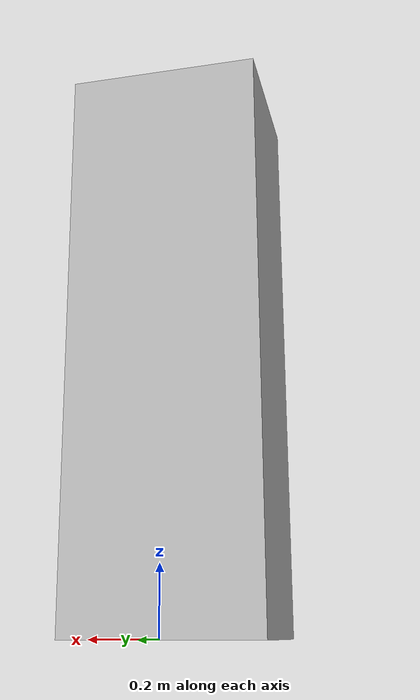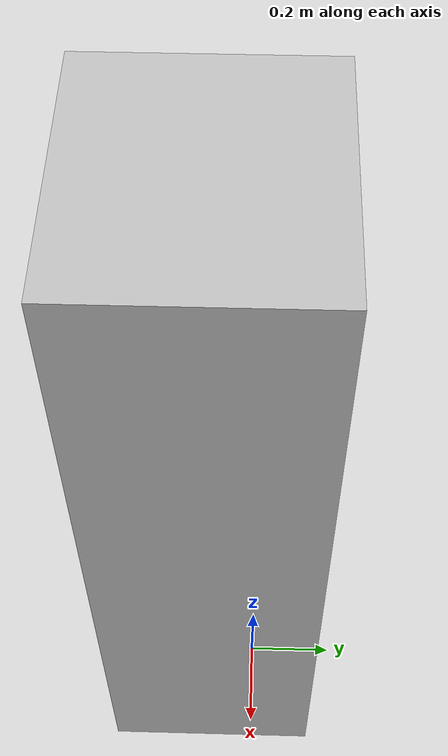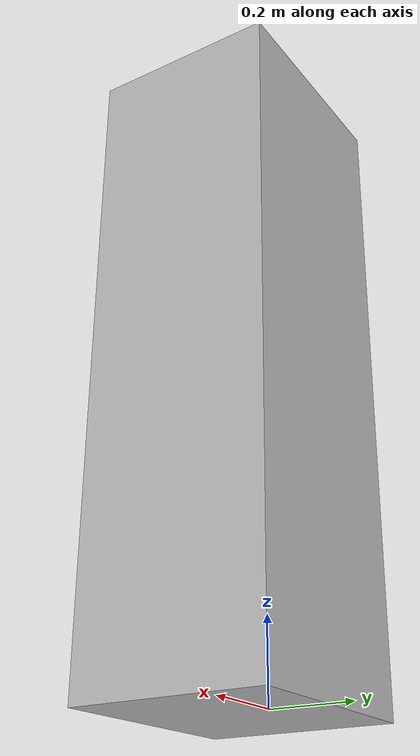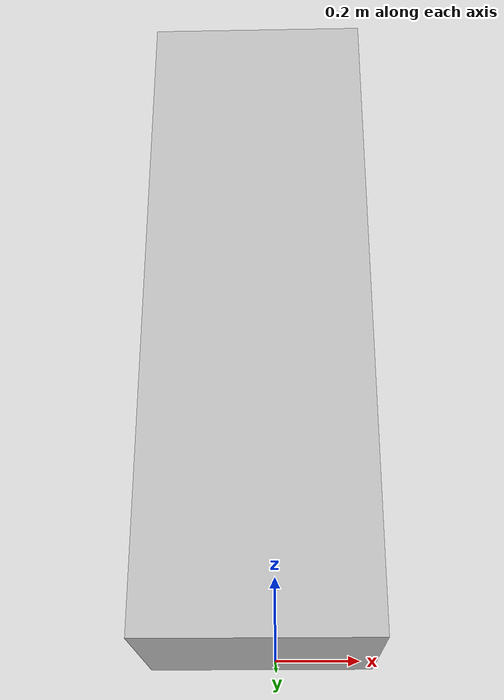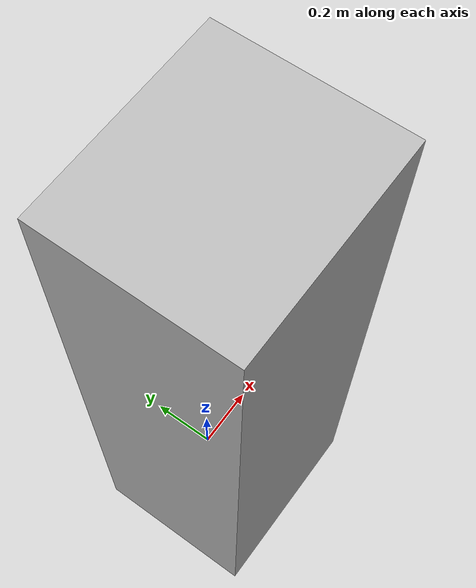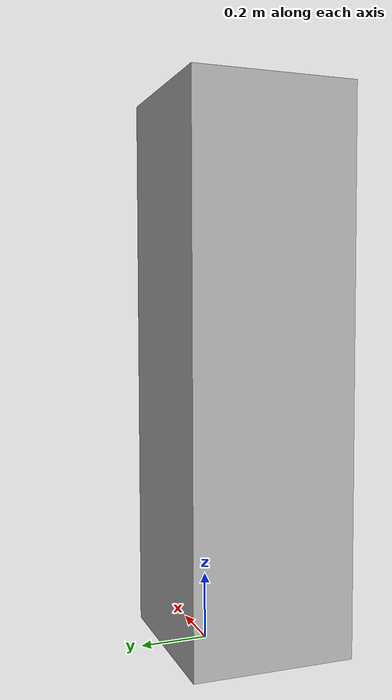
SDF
<?xml version='1.0' encoding='utf-8'?>
<sdf version="1.6">
  <model name="FemaleVisitor">
   <static>true</static>
    <link name="body">
      <pose>0 0 0 0 0 0</pose>

      <visual name="visual">
        <geometry>
          <mesh>
            <uri>model://FemaleVisitor/meshes/FemaleVisitor.obj</uri>
          </mesh>
        </geometry>
      </visual>

      <collision name="collision">
        <geometry>
          <mesh>
            <uri>model://FemaleVisitor/meshes/FemaleVisitor_Col.obj</uri>
          </mesh>
        </geometry>
      </collision>

    </link>
  </model>
</sdf>
